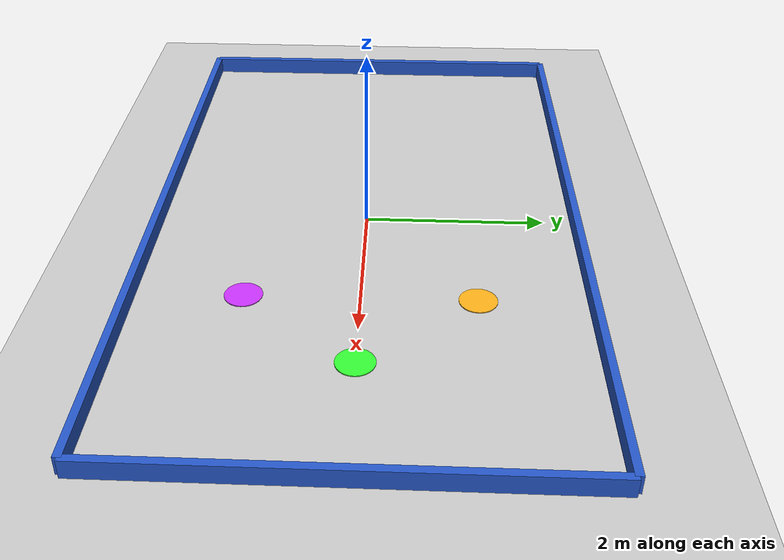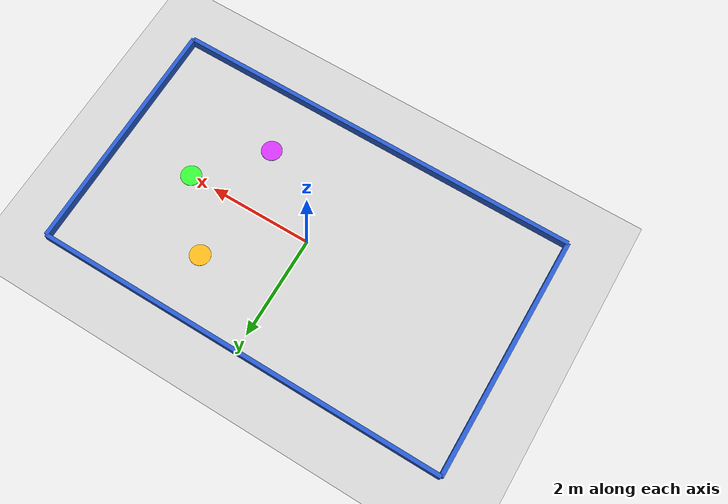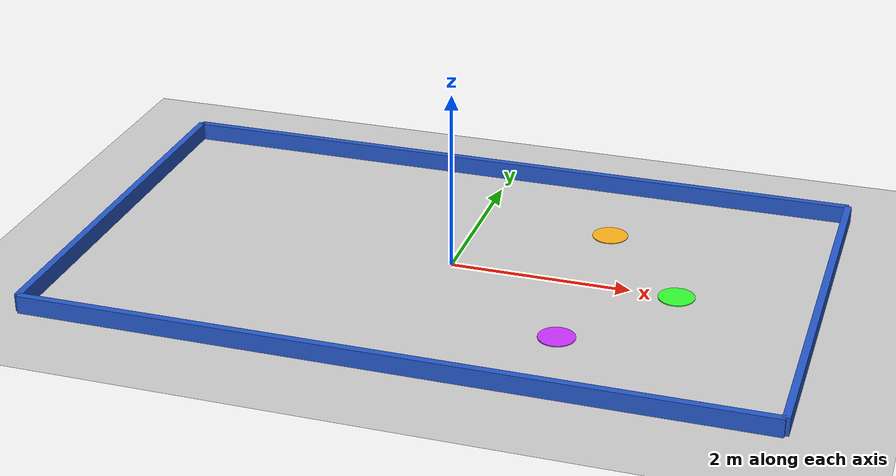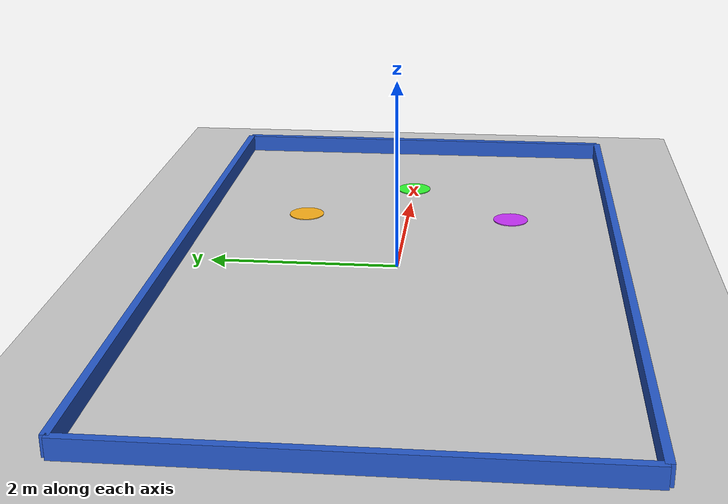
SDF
<?xml version="1.0"?>
<sdf version="1.6">
  <world name="multi_robot_open">
    <include><uri>model://sun</uri></include>
    <include><uri>model://ground_plane</uri></include>
    <physics type="ode"><real_time_update_rate>1000</real_time_update_rate><max_step_size>0.001</max_step_size></physics>
    <plugin name="gazebo_ros_state" filename="libgazebo_ros_state.so">
      <ros><namespace>/gazebo</namespace></ros>
      <update_rate>20.0</update_rate>
    </plugin>

    <!-- Boundary rails remain outside the three open y=0,+/-1.2 corridors. -->
    <model name="north_boundary"><static>true</static><pose>0 2.35 0.10 0 0 0</pose><link name="link"><collision name="collision"><geometry><box><size>8 0.08 0.20</size></box></geometry></collision><visual name="visual"><geometry><box><size>8 0.08 0.20</size></box></geometry><material><ambient>0.15 0.35 0.8 1</ambient></material></visual></link></model>
    <model name="south_boundary"><static>true</static><pose>0 -2.35 0.10 0 0 0</pose><link name="link"><collision name="collision"><geometry><box><size>8 0.08 0.20</size></box></geometry></collision><visual name="visual"><geometry><box><size>8 0.08 0.20</size></box></geometry><material><ambient>0.15 0.35 0.8 1</ambient></material></visual></link></model>
    <model name="west_boundary"><static>true</static><pose>-4 0 0.10 0 0 0</pose><link name="link"><collision name="collision"><geometry><box><size>0.08 4.7 0.20</size></box></geometry></collision><visual name="visual"><geometry><box><size>0.08 4.7 0.20</size></box></geometry><material><ambient>0.15 0.35 0.8 1</ambient></material></visual></link></model>
    <model name="east_boundary"><static>true</static><pose>4 0 0.10 0 0 0</pose><link name="link"><collision name="collision"><geometry><box><size>0.08 4.7 0.20</size></box></geometry></collision><visual name="visual"><geometry><box><size>0.08 4.7 0.20</size></box></geometry><material><ambient>0.15 0.35 0.8 1</ambient></material></visual></link></model>

    <!-- Visual-only target discs do not obstruct the driving surface. -->
    <model name="target_robot1"><static>true</static><pose>2.5 0 0.006 0 0 0</pose><link name="link"><visual name="visual"><geometry><cylinder><radius>0.20</radius><length>0.01</length></cylinder></geometry><material><ambient>0.2 1 0.2 1</ambient></material></visual></link></model>
    <model name="target_robot2"><static>true</static><pose>1.5 1.2 0.006 0 0 0</pose><link name="link"><visual name="visual"><geometry><cylinder><radius>0.20</radius><length>0.01</length></cylinder></geometry><material><ambient>1 0.7 0.1 1</ambient></material></visual></link></model>
    <model name="target_robot3"><static>true</static><pose>1.5 -1.2 0.006 0 0 0</pose><link name="link"><visual name="visual"><geometry><cylinder><radius>0.20</radius><length>0.01</length></cylinder></geometry><material><ambient>0.8 0.2 1 1</ambient></material></visual></link></model>
  </world>
</sdf>
